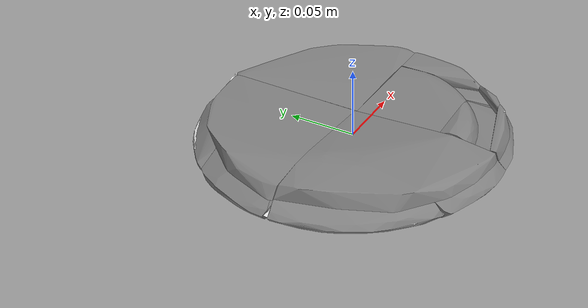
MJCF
<mujoco model="plate">
  <asset>
    <material name="plate_mat" rgba="0.9 0.9 0.9 1" specular="0.3" shininess="0.1"/>
    <mesh name="plate_vis" file="plate_libero.obj" scale="1 1 1"/>
    <mesh name="plate_col_0" file="plate_col_0.obj" scale="1 1 1"/>
    <mesh name="plate_col_1" file="plate_col_1.obj" scale="1 1 1"/>
    <mesh name="plate_col_2" file="plate_col_2.obj" scale="1 1 1"/>
    <mesh name="plate_col_3" file="plate_col_3.obj" scale="1 1 1"/>
    <mesh name="plate_col_4" file="plate_col_4.obj" scale="1 1 1"/>
    <mesh name="plate_col_5" file="plate_col_5.obj" scale="1 1 1"/>
    <mesh name="plate_col_6" file="plate_col_6.obj" scale="1 1 1"/>
    <mesh name="plate_col_7" file="plate_col_7.obj" scale="1 1 1"/>
    <mesh name="plate_col_8" file="plate_col_8.obj" scale="1 1 1"/>
    <mesh name="plate_col_9" file="plate_col_9.obj" scale="1 1 1"/>
    <mesh name="plate_col_10" file="plate_col_10.obj" scale="1 1 1"/>
    <mesh name="plate_col_11" file="plate_col_11.obj" scale="1 1 1"/>
    <mesh name="plate_col_12" file="plate_col_12.obj" scale="1 1 1"/>
    <mesh name="plate_col_13" file="plate_col_13.obj" scale="1 1 1"/>
    <mesh name="plate_col_14" file="plate_col_14.obj" scale="1 1 1"/>
    <mesh name="plate_col_15" file="plate_col_15.obj" scale="1 1 1"/>
  </asset>
  <worldbody>
    <body>
      <body name="object">
        <geom type="mesh" mesh="plate_vis" material="plate_mat" group="1" contype="0" conaffinity="0"/>
        <geom type="mesh" mesh="plate_col_0" group="0" density="100" friction="0.95 0.3 0.1" solimp="0.998 0.998 0.001" solref="0.001 1"/>
        <geom type="mesh" mesh="plate_col_1" group="0" density="100" friction="0.95 0.3 0.1" solimp="0.998 0.998 0.001" solref="0.001 1"/>
        <geom type="mesh" mesh="plate_col_2" group="0" density="100" friction="0.95 0.3 0.1" solimp="0.998 0.998 0.001" solref="0.001 1"/>
        <geom type="mesh" mesh="plate_col_3" group="0" density="100" friction="0.95 0.3 0.1" solimp="0.998 0.998 0.001" solref="0.001 1"/>
        <geom type="mesh" mesh="plate_col_4" group="0" density="100" friction="0.95 0.3 0.1" solimp="0.998 0.998 0.001" solref="0.001 1"/>
        <geom type="mesh" mesh="plate_col_5" group="0" density="100" friction="0.95 0.3 0.1" solimp="0.998 0.998 0.001" solref="0.001 1"/>
        <geom type="mesh" mesh="plate_col_6" group="0" density="100" friction="0.95 0.3 0.1" solimp="0.998 0.998 0.001" solref="0.001 1"/>
        <geom type="mesh" mesh="plate_col_7" group="0" density="100" friction="0.95 0.3 0.1" solimp="0.998 0.998 0.001" solref="0.001 1"/>
        <geom type="mesh" mesh="plate_col_8" group="0" density="100" friction="0.95 0.3 0.1" solimp="0.998 0.998 0.001" solref="0.001 1"/>
        <geom type="mesh" mesh="plate_col_9" group="0" density="100" friction="0.95 0.3 0.1" solimp="0.998 0.998 0.001" solref="0.001 1"/>
        <geom type="mesh" mesh="plate_col_10" group="0" density="100" friction="0.95 0.3 0.1" solimp="0.998 0.998 0.001" solref="0.001 1"/>
        <geom type="mesh" mesh="plate_col_11" group="0" density="100" friction="0.95 0.3 0.1" solimp="0.998 0.998 0.001" solref="0.001 1"/>
        <geom type="mesh" mesh="plate_col_12" group="0" density="100" friction="0.95 0.3 0.1" solimp="0.998 0.998 0.001" solref="0.001 1"/>
        <geom type="mesh" mesh="plate_col_13" group="0" density="100" friction="0.95 0.3 0.1" solimp="0.998 0.998 0.001" solref="0.001 1"/>
        <geom type="mesh" mesh="plate_col_14" group="0" density="100" friction="0.95 0.3 0.1" solimp="0.998 0.998 0.001" solref="0.001 1"/>
        <geom type="mesh" mesh="plate_col_15" group="0" density="100" friction="0.95 0.3 0.1" solimp="0.998 0.998 0.001" solref="0.001 1"/>
      </body>
      <site rgba="0 0 0 0" size="0.005" pos="0 0 0" name="bottom_site"/>
      <site rgba="0 0 0 0" size="0.005" pos="0 0 0.02379" name="top_site"/>
      <site rgba="0 0 0 0" size="0.005" pos="0.10878 0 0" name="horizontal_radius_site"/>
      <site type="box" rgba="0 0 0 0" pos="0 0 0.01309" size="0.06510 0.06527 0.00714" name="contain_region"/>
    </body>
  </worldbody>
</mujoco>
